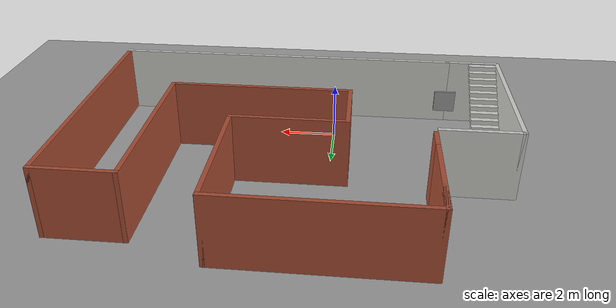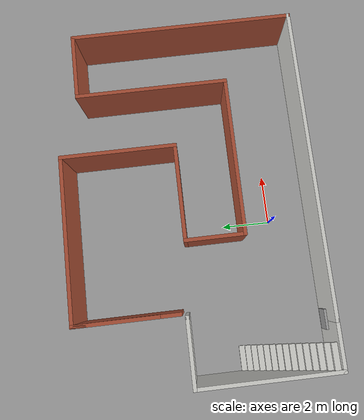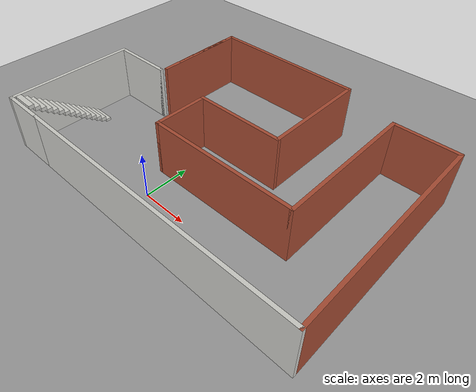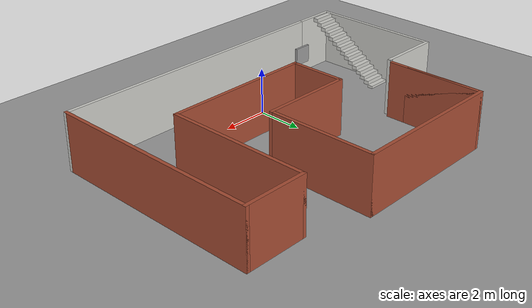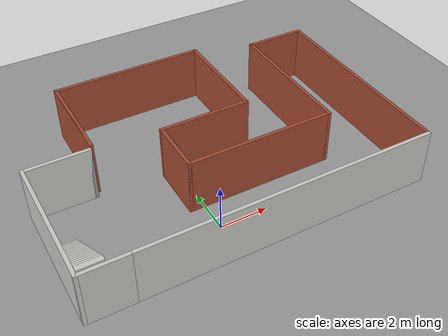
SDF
<sdf version="1.7">
 <world name="default">
  <light name="sun" type="directional">
   <pose>0 0 10 0 -0 0</pose>
   <diffuse>0.8 0.8 0.8 1</diffuse>
   <specular>0.2 0.2 0.2 1</specular>
   <attenuation>
    <range>1000</range>
    <constant>0.9</constant>
    <linear>0.01</linear>
    <quadratic>0.001</quadratic>
   </attenuation>
   <direction>-0.5 0.1 -0.9</direction>
   <spot><inner_angle>0</inner_angle><outer_angle>0</outer_angle><falloff>0</falloff></spot>
  </light>
  <model name="ground_plane">
   <static>1</static>
   <link name="link">
    <collision name="collision">
     <geometry><plane><normal>0 0 1</normal><size>100 100</size></plane></geometry>
     <surface><friction><ode><mu>100</mu><mu2>50</mu2></ode></friction></surface>
    </collision>
    <visual name="visual">
     <cast_shadows>0</cast_shadows>
     <geometry><plane><normal>0 0 1</normal><size>100 100</size></plane></geometry>
     <material>
      <script><uri>file://media/materials/scripts/gazebo.material</uri><name>Gazebo/Grey</name></script>
     </material>
    </visual>
   </link>
  </model>
  <gravity>0 0 -9.8</gravity>
  <magnetic_field>6e-06 2.3e-05 -4.2e-05</magnetic_field>
  <atmosphere type="adiabatic"/>
  <physics type="ode">
   <max_step_size>0.001</max_step_size>
   <real_time_factor>1</real_time_factor>
   <real_time_update_rate>1000</real_time_update_rate>
  </physics>
  <scene><ambient>0.4 0.4 0.4 1</ambient><background>0.7 0.7 0.7 1</background><shadows>1</shadows></scene>
  <audio><device>default</device></audio>
  <spherical_coordinates>
   <surface_model>EARTH_WGS84</surface_model>
   <latitude_deg>0</latitude_deg>
   <longitude_deg>0</longitude_deg>
   <elevation>0</elevation>
   <heading_deg>0</heading_deg>
  </spherical_coordinates>
  <model name="ground_plane_0">
   <static>1</static>
   <link name="link">
    <collision name="collision">
     <geometry><plane><normal>0 0 1</normal><size>100 100</size></plane></geometry>
     <surface><friction><ode><mu>100</mu><mu2>50</mu2></ode></friction></surface>
    </collision>
    <visual name="visual">
     <cast_shadows>0</cast_shadows>
     <geometry><plane><normal>0 0 1</normal><size>100 100</size></plane></geometry>
     <material>
      <script><uri>file://media/materials/scripts/gazebo.material</uri><name>Gazebo/Grey</name></script>
     </material>
    </visual>
   </link>
   <pose>-1.61164 0.657935 0 0 -0 0</pose>
  </model>
  <model name="test">
   <pose>1.13541 3.29259 0 0 -0 0</pose>
   <link name="Stairs_0">
    <visual name="Stairs_0_Visual_0">
     <pose>-6.64653 -1.44782 0.083333 0 -0 0</pose>
     <geometry><box><size>1 0.233333 0.166667</size></box></geometry>
     <material>
      <script><uri>file://media/materials/scripts/gazebo.material</uri><name>Gazebo/CeilingTiled</name></script>
      <ambient>1 1 1 1</ambient>
     </material>
     <meta><layer>0</layer></meta>
    </visual>
    <collision name="Stairs_0_Collision_0">
     <geometry><box><size>1 0.233333 0.166667</size></box></geometry>
     <pose>-6.64653 -1.44782 0.083333 0 -0 0</pose>
    </collision>
    <visual name="Stairs_0_Visual_1">
     <pose>-6.64653 -1.68115 0.25 0 -0 0</pose>
     <geometry><box><size>1 0.233333 0.166667</size></box></geometry>
     <material>
      <script><uri>file://media/materials/scripts/gazebo.material</uri><name>Gazebo/CeilingTiled</name></script>
      <ambient>1 1 1 1</ambient>
     </material>
     <meta><layer>0</layer></meta>
    </visual>
    <collision name="Stairs_0_Collision_1">
     <geometry><box><size>1 0.233333 0.166667</size></box></geometry>
     <pose>-6.64653 -1.68115 0.25 0 -0 0</pose>
    </collision>
    <visual name="Stairs_0_Visual_2">
     <pose>-6.64653 -1.91448 0.416667 0 -0 0</pose>
     <geometry><box><size>1 0.233333 0.166667</size></box></geometry>
     <material>
      <script><uri>file://media/materials/scripts/gazebo.material</uri><name>Gazebo/CeilingTiled</name></script>
      <ambient>1 1 1 1</ambient>
     </material>
     <meta><layer>0</layer></meta>
    </visual>
    <collision name="Stairs_0_Collision_2">
     <geometry><box><size>1 0.233333 0.166667</size></box></geometry>
     <pose>-6.64653 -1.91448 0.416667 0 -0 0</pose>
    </collision>
    <visual name="Stairs_0_Visual_3">
     <pose>-6.64653 -2.14782 0.583333 0 -0 0</pose>
     <geometry><box><size>1 0.233333 0.166667</size></box></geometry>
     <material>
      <script><uri>file://media/materials/scripts/gazebo.material</uri><name>Gazebo/CeilingTiled</name></script>
      <ambient>1 1 1 1</ambient>
     </material>
     <meta><layer>0</layer></meta>
    </visual>
    <collision name="Stairs_0_Collision_3">
     <geometry><box><size>1 0.233333 0.166667</size></box></geometry>
     <pose>-6.64653 -2.14782 0.583333 0 -0 0</pose>
    </collision>
    <visual name="Stairs_0_Visual_4">
     <pose>-6.64653 -2.38115 0.75 0 -0 0</pose>
     <geometry><box><size>1 0.233333 0.166667</size></box></geometry>
     <material>
      <script><uri>file://media/materials/scripts/gazebo.material</uri><name>Gazebo/CeilingTiled</name></script>
      <ambient>1 1 1 1</ambient>
     </material>
     <meta><layer>0</layer></meta>
    </visual>
    <collision name="Stairs_0_Collision_4">
     <geometry><box><size>1 0.233333 0.166667</size></box></geometry>
     <pose>-6.64653 -2.38115 0.75 0 -0 0</pose>
    </collision>
    <visual name="Stairs_0_Visual_5">
     <pose>-6.64653 -2.61448 0.916667 0 -0 0</pose>
     <geometry><box><size>1 0.233333 0.166667</size></box></geometry>
     <material>
      <script><uri>file://media/materials/scripts/gazebo.material</uri><name>Gazebo/CeilingTiled</name></script>
      <ambient>1 1 1 1</ambient>
     </material>
     <meta><layer>0</layer></meta>
    </visual>
    <collision name="Stairs_0_Collision_5">
     <geometry><box><size>1 0.233333 0.166667</size></box></geometry>
     <pose>-6.64653 -2.61448 0.916667 0 -0 0</pose>
    </collision>
    <visual name="Stairs_0_Visual_6">
     <pose>-6.64653 -2.84782 1.08333 0 -0 0</pose>
     <geometry><box><size>1 0.233333 0.166667</size></box></geometry>
     <material>
      <script><uri>file://media/materials/scripts/gazebo.material</uri><name>Gazebo/CeilingTiled</name></script>
      <ambient>1 1 1 1</ambient>
     </material>
     <meta><layer>0</layer></meta>
    </visual>
    <collision name="Stairs_0_Collision_6">
     <geometry><box><size>1 0.233333 0.166667</size></box></geometry>
     <pose>-6.64653 -2.84782 1.08333 0 -0 0</pose>
    </collision>
    <visual name="Stairs_0_Visual_7">
     <pose>-6.64653 -3.08115 1.25 0 -0 0</pose>
     <geometry><box><size>1 0.233333 0.166667</size></box></geometry>
     <material>
      <script><uri>file://media/materials/scripts/gazebo.material</uri><name>Gazebo/CeilingTiled</name></script>
      <ambient>1 1 1 1</ambient>
     </material>
     <meta><layer>0</layer></meta>
    </visual>
    <collision name="Stairs_0_Collision_7">
     <geometry><box><size>1 0.233333 0.166667</size></box></geometry>
     <pose>-6.64653 -3.08115 1.25 0 -0 0</pose>
    </collision>
    <visual name="Stairs_0_Visual_8">
     <pose>-6.64653 -3.31448 1.41667 0 -0 0</pose>
     <geometry><box><size>1 0.233333 0.166667</size></box></geometry>
     <material>
      <script><uri>file://media/materials/scripts/gazebo.material</uri><name>Gazebo/CeilingTiled</name></script>
      <ambient>1 1 1 1</ambient>
     </material>
     <meta><layer>0</layer></meta>
    </visual>
    <collision name="Stairs_0_Collision_8">
     <geometry><box><size>1 0.233333 0.166667</size></box></geometry>
     <pose>-6.64653 -3.31448 1.41667 0 -0 0</pose>
    </collision>
    <visual name="Stairs_0_Visual_9">
     <pose>-6.64653 -3.54782 1.58333 0 -0 0</pose>
     <geometry><box><size>1 0.233333 0.166667</size></box></geometry>
     <material>
      <script><uri>file://media/materials/scripts/gazebo.material</uri><name>Gazebo/CeilingTiled</name></script>
      <ambient>1 1 1 1</ambient>
     </material>
     <meta><layer>0</layer></meta>
    </visual>
    <collision name="Stairs_0_Collision_9">
     <geometry><box><size>1 0.233333 0.166667</size></box></geometry>
     <pose>-6.64653 -3.54782 1.58333 0 -0 0</pose>
    </collision>
    <visual name="Stairs_0_Visual_10">
     <pose>-6.64653 -3.78115 1.75 0 -0 0</pose>
     <geometry><box><size>1 0.233333 0.166667</size></box></geometry>
     <material>
      <script><uri>file://media/materials/scripts/gazebo.material</uri><name>Gazebo/CeilingTiled</name></script>
      <ambient>1 1 1 1</ambient>
     </material>
     <meta><layer>0</layer></meta>
    </visual>
    <collision name="Stairs_0_Collision_10">
     <geometry><box><size>1 0.233333 0.166667</size></box></geometry>
     <pose>-6.64653 -3.78115 1.75 0 -0 0</pose>
    </collision>
    <visual name="Stairs_0_Visual_11">
     <pose>-6.64653 -4.01448 1.91667 0 -0 0</pose>
     <geometry><box><size>1 0.233333 0.166667</size></box></geometry>
     <material>
      <script><uri>file://media/materials/scripts/gazebo.material</uri><name>Gazebo/CeilingTiled</name></script>
      <ambient>1 1 1 1</ambient>
     </material>
     <meta><layer>0</layer></meta>
    </visual>
    <collision name="Stairs_0_Collision_11">
     <geometry><box><size>1 0.233333 0.166667</size></box></geometry>
     <pose>-6.64653 -4.01448 1.91667 0 -0 0</pose>
    </collision>
    <visual name="Stairs_0_Visual_12">
     <pose>-6.64653 -4.24782 2.08333 0 -0 0</pose>
     <geometry><box><size>1 0.233333 0.166667</size></box></geometry>
     <material>
      <script><uri>file://media/materials/scripts/gazebo.material</uri><name>Gazebo/CeilingTiled</name></script>
      <ambient>1 1 1 1</ambient>
     </material>
     <meta><layer>0</layer></meta>
    </visual>
    <collision name="Stairs_0_Collision_12">
     <geometry><box><size>1 0.233333 0.166667</size></box></geometry>
     <pose>-6.64653 -4.24782 2.08333 0 -0 0</pose>
    </collision>
    <visual name="Stairs_0_Visual_13">
     <pose>-6.64653 -4.48115 2.25 0 -0 0</pose>
     <geometry><box><size>1 0.233333 0.166667</size></box></geometry>
     <material>
      <script><uri>file://media/materials/scripts/gazebo.material</uri><name>Gazebo/CeilingTiled</name></script>
      <ambient>1 1 1 1</ambient>
     </material>
     <meta><layer>0</layer></meta>
    </visual>
    <collision name="Stairs_0_Collision_13">
     <geometry><box><size>1 0.233333 0.166667</size></box></geometry>
     <pose>-6.64653 -4.48115 2.25 0 -0 0</pose>
    </collision>
    <visual name="Stairs_0_Visual_14">
     <pose>-6.64653 -4.71448 2.41667 0 -0 0</pose>
     <geometry><box><size>1 0.233333 0.166667</size></box></geometry>
     <material>
      <script><uri>file://media/materials/scripts/gazebo.material</uri><name>Gazebo/CeilingTiled</name></script>
      <ambient>1 1 1 1</ambient>
     </material>
     <meta><layer>0</layer></meta>
    </visual>
    <collision name="Stairs_0_Collision_14">
     <geometry><box><size>1 0.233333 0.166667</size></box></geometry>
     <pose>-6.64653 -4.71448 2.41667 0 -0 0</pose>
    </collision>
   </link>
   <link name="Wall_0">
    <pose>-4.475 2.925 0 0 -0 1.5708</pose>
    <visual name="Wall_0_Visual_0">
     <pose>0 0 1.25 0 -0 0</pose>
     <geometry><box><size>4.25 0.15 2.5</size></box></geometry>
     <material>
      <script><uri>file://media/materials/scripts/gazebo.material</uri><name>Gazebo/Bricks</name></script>
      <ambient>1 1 1 1</ambient>
     </material>
     <meta><layer>0</layer></meta>
    </visual>
    <collision name="Wall_0_Collision_0">
     <geometry><box><size>4.25 0.15 2.5</size></box></geometry>
     <pose>0 0 1.25 0 -0 0</pose>
    </collision>
    <visual name="Wall_0_Visual_1">
     <pose>0.410445 0 1.25 0 -0 0</pose>
     <geometry><box><size>3.42911 0.15 2.5</size></box></geometry>
     <material>
      <script><uri>file://media/materials/scripts/gazebo.material</uri><name>Gazebo/Bricks</name></script>
      <ambient>1 1 1 1</ambient>
     </material>
     <meta><layer>0</layer></meta>
    </visual>
    <collision name="Wall_0_Collision_1">
     <geometry><box><size>3.42911 0.15 2.5</size></box></geometry>
     <pose>0.410445 0 1.25 0 -0 0</pose>
    </collision>
   </link>
   <link name="Wall_1">
    <collision name="Wall_1_Collision">
     <geometry><box><size>6.75 0.15 2.5</size></box></geometry>
     <pose>0 0 1.25 0 -0 0</pose>
    </collision>
    <visual name="Wall_1_Visual">
     <pose>0 0 1.25 0 -0 0</pose>
     <geometry><box><size>6.75 0.15 2.5</size></box></geometry>
     <material>
      <script><uri>file://media/materials/scripts/gazebo.material</uri><name>Gazebo/Bricks</name></script>
      <ambient>1 1 1 1</ambient>
     </material>
     <meta><layer>0</layer></meta>
    </visual>
    <pose>-1.175 4.975 0 0 -0 0</pose>
   </link>
   <link name="Wall_11">
    <collision name="Wall_11_Collision">
     <geometry><box><size>2 0.15 2.5</size></box></geometry>
     <pose>0 0 1.25 0 -0 0</pose>
    </collision>
    <visual name="Wall_11_Visual">
     <pose>0 0 1.25 0 -0 0</pose>
     <geometry><box><size>2 0.15 2.5</size></box></geometry>
     <material>
      <script><uri>file://media/materials/scripts/gazebo.material</uri><name>Gazebo/CeilingTiled</name></script>
      <ambient>1 1 1 1</ambient>
     </material>
     <meta><layer>0</layer></meta>
    </visual>
    <pose>-6.3 -4.975 0 0 -0 3.14159</pose>
   </link>
   <link name="Wall_12">
    <collision name="Wall_12_Collision">
     <geometry><box><size>5.75 0.15 2.5</size></box></geometry>
     <pose>0 0 1.25 0 -0 0</pose>
    </collision>
    <visual name="Wall_12_Visual">
     <pose>0 0 1.25 0 -0 0</pose>
     <geometry><box><size>5.75 0.15 2.5</size></box></geometry>
     <material>
      <script><uri>file://media/materials/scripts/gazebo.material</uri><name>Gazebo/CeilingTiled</name></script>
      <ambient>1 1 1 1</ambient>
     </material>
     <meta><layer>0</layer></meta>
    </visual>
    <pose>-7.225 -2.175 0 0 -0 1.5708</pose>
   </link>
   <link name="Wall_14">
    <collision name="Wall_14_Collision">
     <geometry><box><size>2.75 0.15 2.5</size></box></geometry>
     <pose>0 0 1.25 0 -0 0</pose>
    </collision>
    <visual name="Wall_14_Visual">
     <pose>0 0 1.25 0 -0 0</pose>
     <geometry><box><size>2.75 0.15 2.5</size></box></geometry>
     <material>
      <script><uri>file://media/materials/scripts/gazebo.material</uri><name>Gazebo/CeilingTiled</name></script>
      <ambient>1 1 1 1</ambient>
     </material>
     <meta><layer>0</layer></meta>
    </visual>
    <pose>-5.925 0.625 0 0 -0 0</pose>
   </link>
   <link name="Wall_15">
    <collision name="Wall_15_Collision">
     <geometry><box><size>0.15 0.15 2.5</size></box></geometry>
     <pose>0 0 1.25 0 -0 0</pose>
    </collision>
    <visual name="Wall_15_Visual">
     <pose>0 0 1.25 0 -0 0</pose>
     <geometry><box><size>0.15 0.15 2.5</size></box></geometry>
     <material>
      <script><uri>file://media/materials/scripts/gazebo.material</uri><name>Gazebo/Grey</name></script>
      <ambient>1 1 1 1</ambient>
     </material>
     <meta><layer>0</layer></meta>
    </visual>
    <pose>-4.625 0.625 0 0 -0 0</pose>
   </link>
   <link name="Wall_2">
    <collision name="Wall_2_Collision">
     <geometry><box><size>4.75 0.15 2.5</size></box></geometry>
     <pose>0 0 1.25 0 -0 0</pose>
    </collision>
    <visual name="Wall_2_Visual">
     <pose>0 0 1.25 0 -0 0</pose>
     <geometry><box><size>4.75 0.15 2.5</size></box></geometry>
     <material>
      <script><uri>file://media/materials/scripts/gazebo.material</uri><name>Gazebo/Bricks</name></script>
      <ambient>1 1 1 1</ambient>
     </material>
     <meta><layer>0</layer></meta>
    </visual>
    <pose>2.125 2.675 0 0 -0 -1.5708</pose>
   </link>
   <link name="Wall_3">
    <collision name="Wall_3_Collision">
     <geometry><box><size>4 0.15 2.5</size></box></geometry>
     <pose>0 0 1.25 0 -0 0</pose>
    </collision>
    <visual name="Wall_3_Visual">
     <pose>0 0 1.25 0 -0 0</pose>
     <geometry><box><size>4 0.15 2.5</size></box></geometry>
     <material>
      <script><uri>file://media/materials/scripts/gazebo.material</uri><name>Gazebo/Bricks</name></script>
      <ambient>1 1 1 1</ambient>
     </material>
     <meta><layer>0</layer></meta>
    </visual>
    <pose>0.2 0.375 0 0 -0 3.14159</pose>
   </link>
   <link name="Wall_4">
    <collision name="Wall_4_Collision">
     <geometry><box><size>2.5 0.15 2.5</size></box></geometry>
     <pose>0 0 1.25 0 -0 0</pose>
    </collision>
    <visual name="Wall_4_Visual">
     <pose>0 0 1.25 0 -0 0</pose>
     <geometry><box><size>2.5 0.15 2.5</size></box></geometry>
     <material>
      <script><uri>file://media/materials/scripts/gazebo.material</uri><name>Gazebo/Bricks</name></script>
      <ambient>1 1 1 1</ambient>
     </material>
     <meta><layer>0</layer></meta>
    </visual>
    <pose>-1.725 -0.8 0 0 -0 -1.5708</pose>
   </link>
   <link name="Wall_5">
    <collision name="Wall_5_Collision">
     <geometry><box><size>6.5 0.15 2.5</size></box></geometry>
     <pose>0 0 1.25 0 -0 0</pose>
    </collision>
    <visual name="Wall_5_Visual">
     <pose>0 0 1.25 0 -0 0</pose>
     <geometry><box><size>6.5 0.15 2.5</size></box></geometry>
     <material>
      <script><uri>file://media/materials/scripts/gazebo.material</uri><name>Gazebo/Bricks</name></script>
      <ambient>1 1 1 1</ambient>
     </material>
     <meta><layer>0</layer></meta>
    </visual>
    <pose>1.45 -1.975 0 0 -0 0</pose>
   </link>
   <link name="Wall_6">
    <collision name="Wall_6_Collision">
     <geometry><box><size>6.25 0.15 2.5</size></box></geometry>
     <pose>0 0 1.25 0 -0 0</pose>
    </collision>
    <visual name="Wall_6_Visual">
     <pose>0 0 1.25 0 -0 0</pose>
     <geometry><box><size>6.25 0.15 2.5</size></box></geometry>
     <material>
      <script><uri>file://media/materials/scripts/gazebo.material</uri><name>Gazebo/Bricks</name></script>
      <ambient>1 1 1 1</ambient>
     </material>
     <meta><layer>0</layer></meta>
    </visual>
    <pose>4.625 1.075 0 0 -0 1.5708</pose>
   </link>
   <link name="Wall_7">
    <collision name="Wall_7_Collision">
     <geometry><box><size>2.75 0.15 2.5</size></box></geometry>
     <pose>0 0 1.25 0 -0 0</pose>
    </collision>
    <visual name="Wall_7_Visual">
     <pose>0 0 1.25 0 -0 0</pose>
     <geometry><box><size>2.75 0.15 2.5</size></box></geometry>
     <material>
      <script><uri>file://media/materials/scripts/gazebo.material</uri><name>Gazebo/Bricks</name></script>
      <ambient>1 1 1 1</ambient>
     </material>
     <meta><layer>0</layer></meta>
    </visual>
    <pose>5.925 4.125 0 0 -0 0</pose>
   </link>
   <link name="Wall_8">
    <collision name="Wall_8_Collision">
     <geometry><box><size>9.25 0.15 2.5</size></box></geometry>
     <pose>0 0 1.25 0 -0 0</pose>
    </collision>
    <visual name="Wall_8_Visual">
     <pose>0 0 1.25 0 -0 0</pose>
     <geometry><box><size>9.25 0.15 2.5</size></box></geometry>
     <material>
      <script><uri>file://media/materials/scripts/gazebo.material</uri><name>Gazebo/Bricks</name></script>
      <ambient>1 1 1 1</ambient>
     </material>
     <meta><layer>0</layer></meta>
    </visual>
    <pose>7.225 -0.425 0 0 -0 -1.5708</pose>
   </link>
   <link name="Wall_9">
    <collision name="Wall_9_Collision">
     <geometry><box><size>12.75 0.15 2.5</size></box></geometry>
     <pose>0 0 1.25 0 -0 0</pose>
    </collision>
    <visual name="Wall_9_Visual">
     <pose>0 0 1.25 0 -0 0</pose>
     <geometry><box><size>12.75 0.15 2.5</size></box></geometry>
     <material>
      <script><uri>file://media/materials/scripts/gazebo.material</uri><name>Gazebo/CeilingTiled</name></script>
      <ambient>1 1 1 1</ambient>
     </material>
     <meta><layer>0</layer></meta>
    </visual>
    <pose>0.925 -4.975 0 0 -0 3.14159</pose>
   </link>
   <link name="Window_0">
    <collision name="Window_0_Collision">
     <geometry><box><size>0.8 0.17 0.8</size></box></geometry>
     <pose>0 0 0.4 0 -0 0</pose>
    </collision>
    <visual name="Window_0_Visual">
     <pose>0 0 0.4 0 -0 0</pose>
     <geometry><box><size>0.8 0.17 0.8</size></box></geometry>
     <material>
      <script><uri>file://media/materials/scripts/gazebo.material</uri><name>Gazebo/Grey</name></script>
     </material>
    </visual>
    <pose>-5.39233 -4.88598 0.5 0 -0 0</pose>
   </link>
   <static>1</static>
  </model>
 </world>
</sdf>
